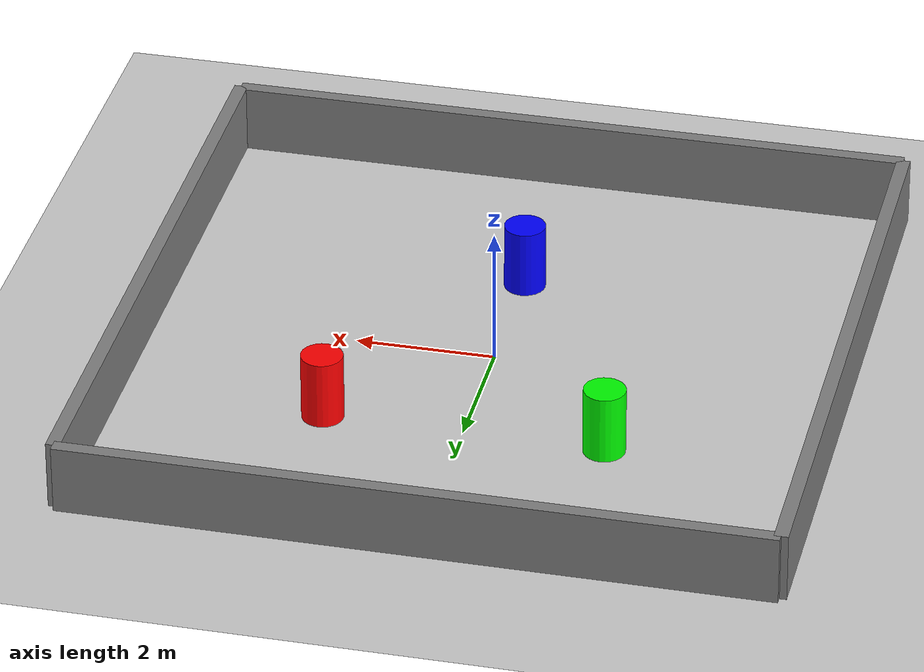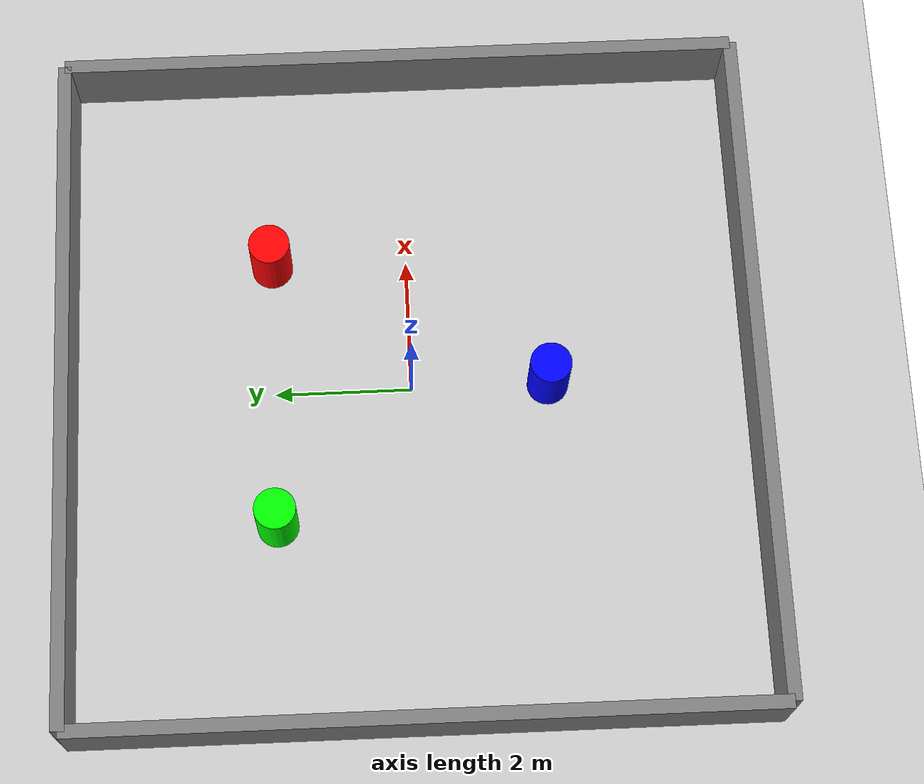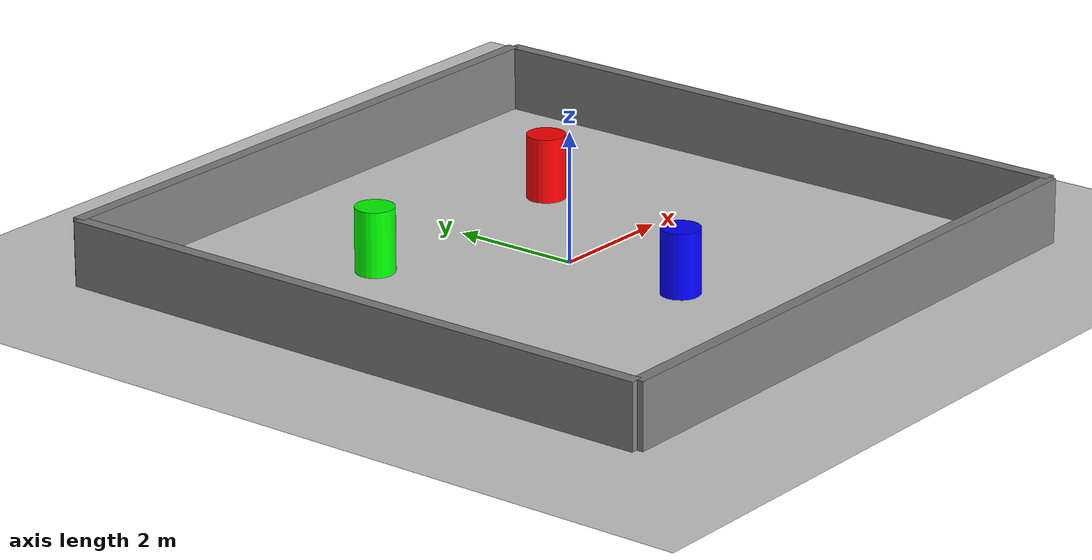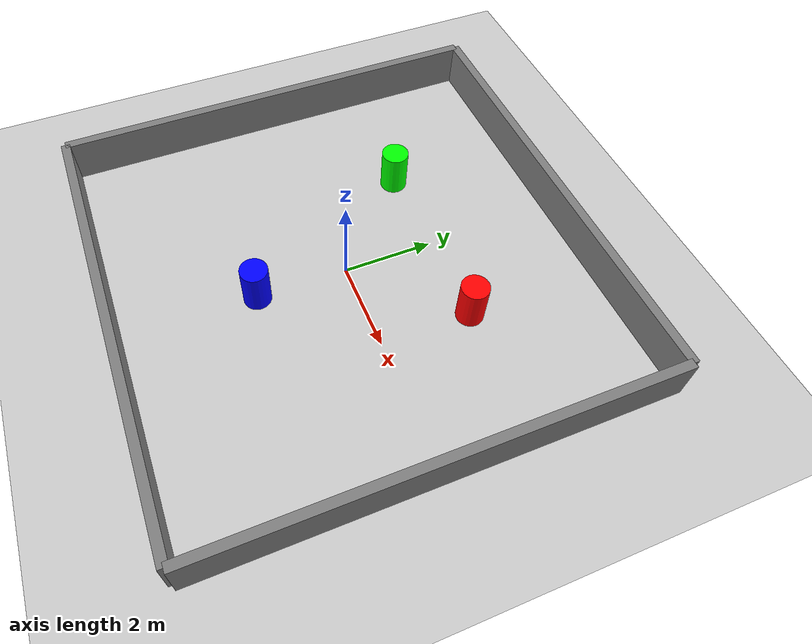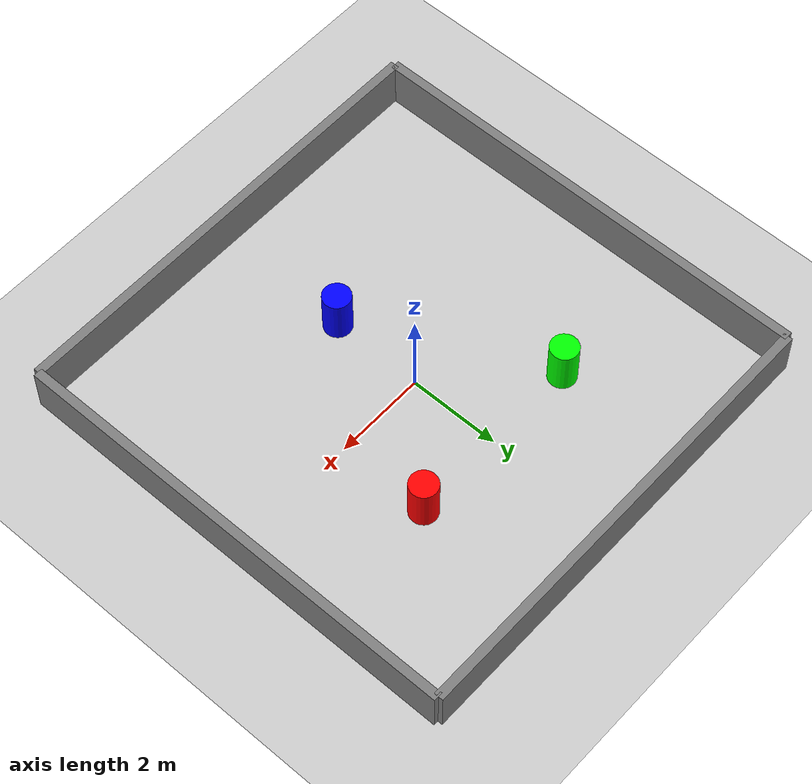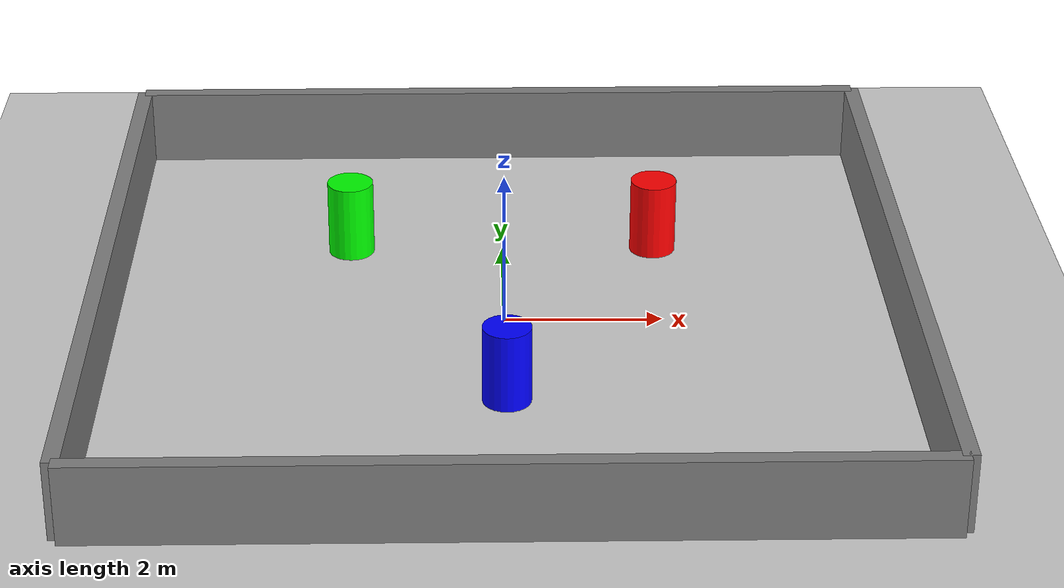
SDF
<?xml version="1.0" ?>
<sdf version="1.6">
  <world name="empty">
    <physics name="1ms" type="ignored">
      <max_step_size>0.001</max_step_size>
      <real_time_factor>1.0</real_time_factor>
    </physics>
    <plugin filename="libgz-sim-physics-system.so" name="gz::sim::systems::Physics"></plugin>
    <plugin filename="libgz-sim-user-commands-system.so" name="gz::sim::systems::UserCommands"></plugin>
    <plugin filename="libgz-sim-scene-broadcaster-system.so" name="gz::sim::systems::SceneBroadcaster"></plugin>
    <plugin filename="libgz-sim-sensors-system.so" name="gz::sim::systems::Sensors">
      <render_engine>ogre2</render_engine>
    </plugin>

    <light type="directional" name="sun">
      <cast_shadows>true</cast_shadows>
      <pose>0 0 10 0 0 0</pose>
      <diffuse>0.8 0.8 0.8 1</diffuse>
      <specular>0.2 0.2 0.2 1</specular>
      <direction>-0.5 0.1 -0.9</direction>
    </light>

    <model name="ground_plane">
      <static>true</static>
      <link name="link">
        <collision name="collision">
          <geometry><plane><normal>0 0 1</normal><size>100 100</size></plane></geometry>
        </collision>
        <visual name="visual">
          <geometry><plane><normal>0 0 1</normal><size>100 100</size></plane></geometry>
          <material><ambient>0.8 0.8 0.8 1</ambient><diffuse>0.8 0.8 0.8 1</diffuse></material>
        </visual>
      </link>
    </model>

    <!-- NAVIGATION TEST ENVIRONMENT -->

    <!-- Outer Walls -->
    <model name="wall_north">
      <static>true</static>
      <pose>5 0 0.5 0 0 0</pose>
      <link name="link">
        <collision name="collision"><geometry><box><size>0.2 10 1</size></box></geometry></collision>
        <visual name="visual"><geometry><box><size>0.2 10 1</size></box></geometry><material><ambient>0.5 0.5 0.5 1</ambient><diffuse>0.5 0.5 0.5 1</diffuse></material></visual>
      </link>
    </model>

    <model name="wall_south">
      <static>true</static>
      <pose>-5 0 0.5 0 0 0</pose>
      <link name="link">
        <collision name="collision"><geometry><box><size>0.2 10 1</size></box></geometry></collision>
        <visual name="visual"><geometry><box><size>0.2 10 1</size></box></geometry><material><ambient>0.5 0.5 0.5 1</ambient><diffuse>0.5 0.5 0.5 1</diffuse></material></visual>
      </link>
    </model>

    <model name="wall_east">
      <static>true</static>
      <pose>0 5 0.5 0 0 0</pose>
      <link name="link">
        <collision name="collision"><geometry><box><size>10 0.2 1</size></box></geometry></collision>
        <visual name="visual"><geometry><box><size>10 0.2 1</size></box></geometry><material><ambient>0.5 0.5 0.5 1</ambient><diffuse>0.5 0.5 0.5 1</diffuse></material></visual>
      </link>
    </model>

    <model name="wall_west">
      <static>true</static>
      <pose>0 -5 0.5 0 0 0</pose>
      <link name="link">
        <collision name="collision"><geometry><box><size>10 0.2 1</size></box></geometry></collision>
        <visual name="visual"><geometry><box><size>10 0.2 1</size></box></geometry><material><ambient>0.5 0.5 0.5 1</ambient><diffuse>0.5 0.5 0.5 1</diffuse></material></visual>
      </link>
    </model>

    <!-- Internal Pillars -->
    <model name="pillar_1">
      <static>true</static>
      <pose>2 2 0.5 0 0 0</pose>
      <link name="link">
        <collision name="collision"><geometry><cylinder><radius>0.3</radius><length>1</length></cylinder></geometry></collision>
        <visual name="visual"><geometry><cylinder><radius>0.3</radius><length>1</length></cylinder></geometry><material><ambient>1 0 0 1</ambient><diffuse>1 0 0 1</diffuse></material></visual>
      </link>
    </model>

    <model name="pillar_2">
      <static>true</static>
      <pose>-2 2 0.5 0 0 0</pose>
      <link name="link">
        <collision name="collision"><geometry><cylinder><radius>0.3</radius><length>1</length></cylinder></geometry></collision>
        <visual name="visual"><geometry><cylinder><radius>0.3</radius><length>1</length></cylinder></geometry><material><ambient>0 1 0 1</ambient><diffuse>0 1 0 1</diffuse></material></visual>
      </link>
    </model>

    <model name="pillar_3">
      <static>true</static>
      <pose>0 -2 0.5 0 0 0</pose>
      <link name="link">
        <collision name="collision"><geometry><cylinder><radius>0.3</radius><length>1</length></cylinder></geometry></collision>
        <visual name="visual"><geometry><cylinder><radius>0.3</radius><length>1</length></cylinder></geometry><material><ambient>0 0 1 1</ambient><diffuse>0 0 1 1</diffuse></material></visual>
      </link>
    </model>
  </world>
</sdf>
